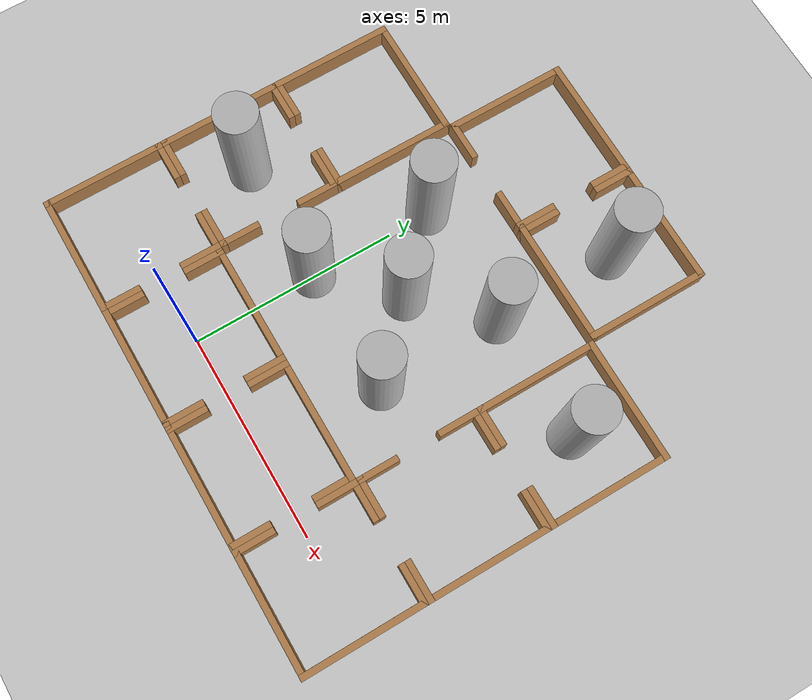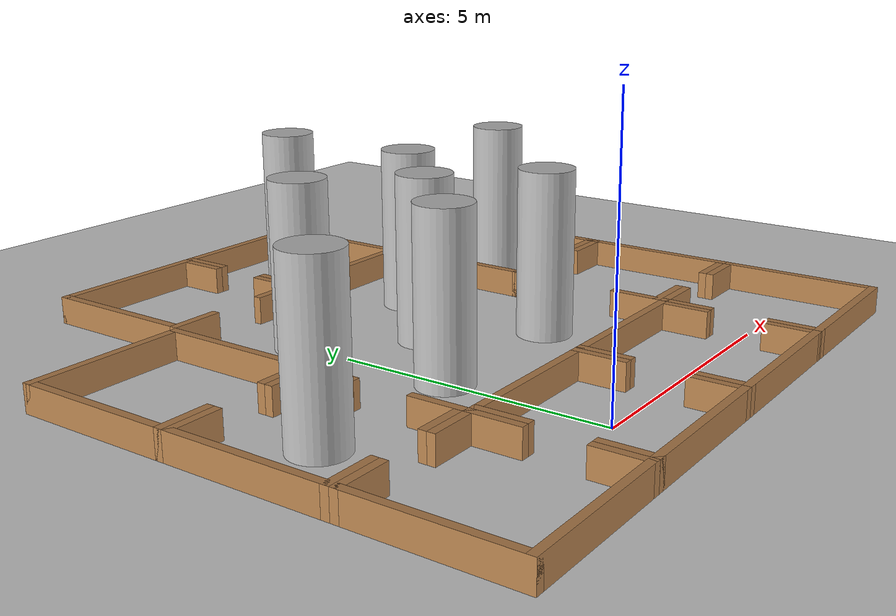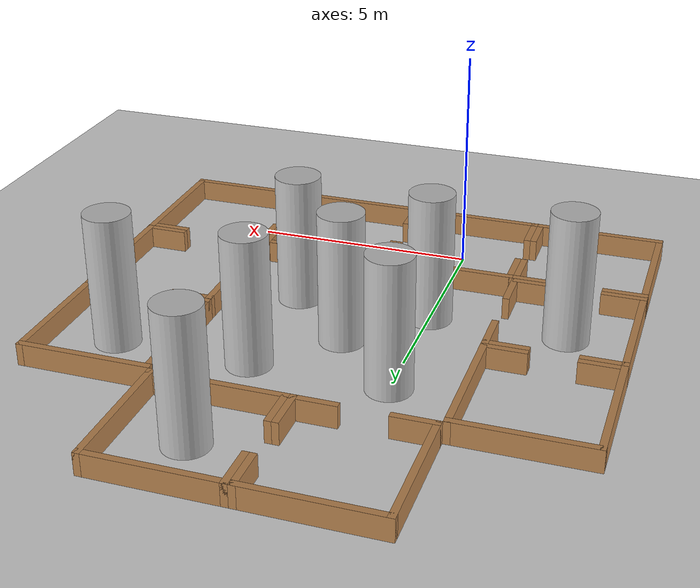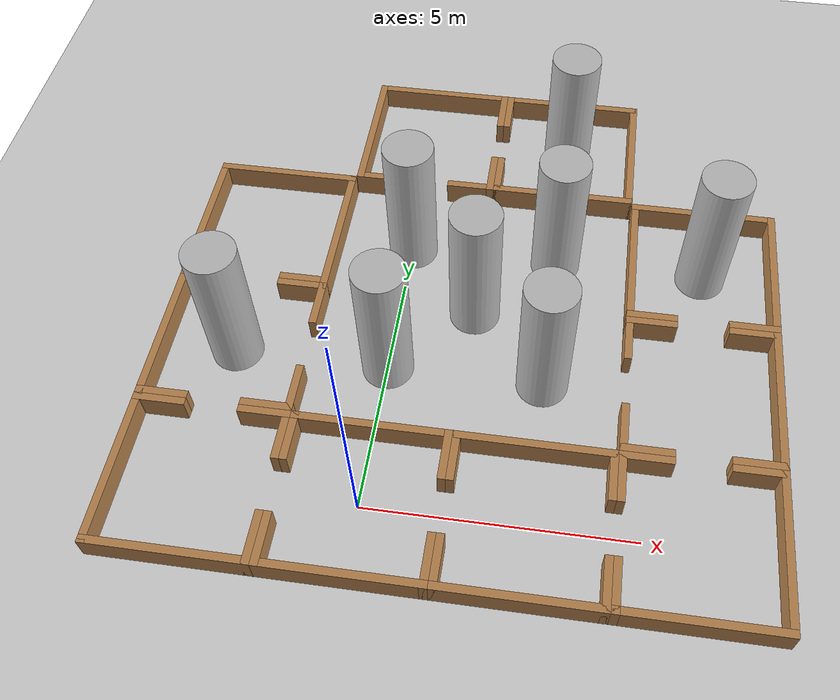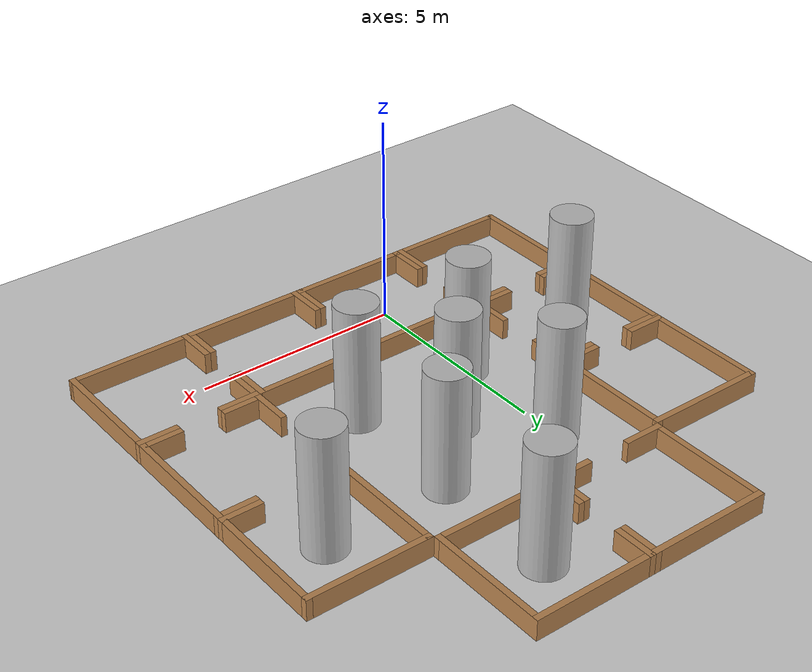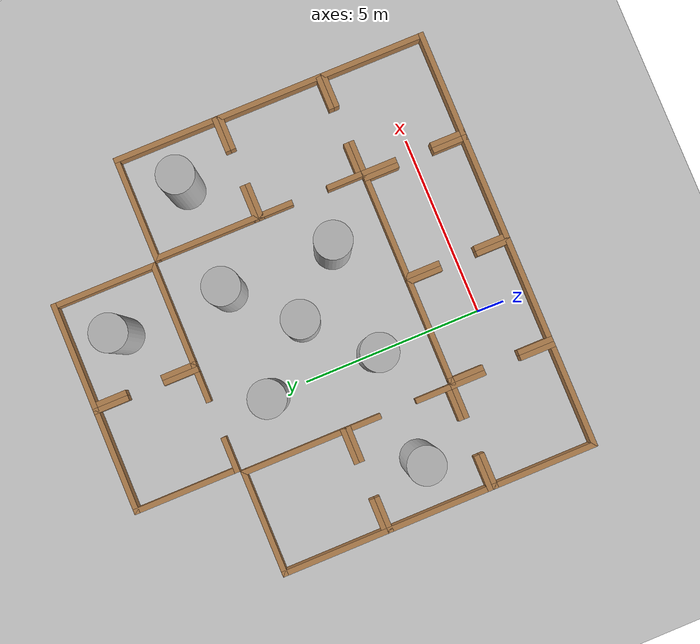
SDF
<sdf version='1.6'>
  <world name='default'>
    <!-- A global light source -->
    <include>
      <uri>model://sun</uri>
    </include>

    <!-- A ground plane -->
    <include>
      <uri>model://ground_plane</uri>
    </include>

    <physics type="ode">
      <real_time_update_rate>1000.0</real_time_update_rate>
      <max_step_size>0.001</max_step_size>
      <real_time_factor>1</real_time_factor>
      <ode>
        <solver>
          <type>quick</type>
          <iters>150</iters>
          <precon_iters>0</precon_iters>
          <sor>1.400000</sor>
          <use_dynamic_moi_rescaling>1</use_dynamic_moi_rescaling>
        </solver>
        <constraints>
          <cfm>0.00001</cfm>
          <erp>0.2</erp>
          <contact_max_correcting_vel>2000.000000</contact_max_correcting_vel>
          <contact_surface_layer>0.01000</contact_surface_layer>
        </constraints>
      </ode>
    </physics>

    <!-- Load world -->
    <include>
      <uri>model://square_3_i</uri>
      <name>s_0_0</name>
      <pose>0 0 0 0 0 0</pose>
    </include>
    <include>
      <uri>model://square_3_i</uri>
      <name>s_3_0</name>
      <pose>3 0 0 0 0 0</pose>
    </include>
    <include>
      <uri>model://square_3_l</uri>
      <name>s_6_0</name>
      <pose>6 0 0 0 0 1.570796</pose>
    </include>
    <include>
      <uri>model://square_3_t</uri>
      <name>s_6_3</name>
      <pose>6 3 0 0 0 0</pose>
    </include>
    <include>
      <uri>model://square_3_d</uri>
      <name>s_6_6</name>
      <pose>6 6 0 0 0 -1.570796</pose>
    </include>
    <include>
      <uri>model://square_3_d</uri>
      <name>s_3_9</name>
      <pose>3 9 0 0 0 3.141592</pose>
    </include>
    <include>
      <uri>model://square_3_l</uri>
      <name>s_0_9</name>
      <pose>0 9 0 0 0 -1.570796</pose>
    </include>

    <include>
      <uri>model://square_3_d</uri>
      <name>s_n3_6</name>
      <pose>-3 6 0 0 0 -1.570796</pose>
    </include>
    <include>
      <uri>model://square_3_t</uri>
      <name>s_n3_3</name>
      <pose>-3 3 0 0 0 3.141592</pose>
    </include>
    <include>
      <uri>model://square_3_l</uri>
      <name>s_n3_0</name>
      <pose>-3 0 0 0 0 0</pose>
    </include>

    <include>
      <uri>model://cylinder_1</uri>
      <name>c_0_3</name>
      <pose>0 3 0 0 0 0</pose>
    </include>
    <include>
      <uri>model://cylinder_1</uri>
      <name>c_3_3</name>
      <pose>3 3 0 0 0 0</pose>
    </include>
    <include>
      <uri>model://cylinder_1</uri>
      <name>c_0_6</name>
      <pose>0 6 0 0 0 0</pose>
    </include>
    <include>
      <uri>model://cylinder_1</uri>
      <name>c_3_6</name>
      <pose>3 6 0 0 0 0</pose>
    </include>
    <include>
      <uri>model://cylinder_1</uri>
      <name>c_15_45</name>
      <pose>1.5 4.5 0 0 0 0</pose>
    </include>

    <include>
      <uri>model://cylinder_1</uri>
      <name>c_6_6</name>
      <pose>6 6 0 0 0 0</pose>
    </include>
    <include>
      <uri>model://cylinder_1</uri>
      <name>c_3_9</name>
      <pose>3 9 0 0 0 0</pose>
    </include>
    <include>
      <uri>model://cylinder_1</uri>
      <name>c_n3_3</name>
      <pose>-3 3 0 0 0 0</pose>
    </include>

    <scene>
      <ambient>0.4 0.4 0.4 1</ambient>
      <background>0.7 0.7 0.7 1</background>
      <shadows>true</shadows>
    </scene>

    <gui fullscreen='0'>
      <camera name='user_camera'>
        <pose>0.0 0.0 17.0 0 1.5708 0</pose>
        <view_controller>orbit</view_controller>
      </camera>
    </gui>
  </world>
</sdf>

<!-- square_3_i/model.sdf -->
<sdf version='1.6'>
  <model name='square_3_i'>
    <pose frame=''>0 0 0 0 -0 0</pose>
    <link name='Wall_0'>
      <collision name='Wall_0_Collision'>
        <geometry>
          <box>
            <size>3 0.15 0.5</size>
          </box>
        </geometry>
        <pose frame=''>0 0 0.25 0 -0 0</pose>
      </collision>
      <visual name='Wall_0_Visual'>
        <pose frame=''>0 0 0.25 0 -0 0</pose>
        <geometry>
          <box>
            <size>3 0.15 0.5</size>
          </box>
        </geometry>
        <material>
          <script>
            <uri>file://media/materials/scripts/gazebo.material</uri>
            <name>Gazebo/Wood</name>
          </script>
          <ambient>1 1 1 1</ambient>
        </material>
      </visual>
      <pose frame=''>0 1.425 0 0 -0 0</pose>
    </link>

    <link name='Wall_2'>
      <collision name='Wall_2_Collision'>
        <geometry>
          <box>
            <size>1 0.15 0.5</size>
          </box>
        </geometry>
        <pose frame=''>0 0 0.25 0 -0 0</pose>
      </collision>
      <visual name='Wall_2_Visual'>
        <pose frame=''>0 0 0.25 0 -0 0</pose>
        <geometry>
          <box>
            <size>1 0.15 0.5</size>
          </box>
        </geometry>
        <material>
          <script>
            <uri>file://media/materials/scripts/gazebo.material</uri>
            <name>Gazebo/Wood</name>
          </script>
          <ambient>1 1 1 1</ambient>
        </material>
      </visual>
      <pose frame=''>-1.425 -1 0 0 0 -1.5708</pose>
    </link>
    <link name='Wall_2a'>
      <collision name='Wall_2a_Collision'>
        <geometry>
          <box>
            <size>1 0.15 0.5</size>
          </box>
        </geometry>
        <pose frame=''>0 0 0.25 0 -0 0</pose>
      </collision>
      <visual name='Wall_2a_Visual'>
        <pose frame=''>0 0 0.25 0 -0 0</pose>
        <geometry>
          <box>
            <size>1 0.15 0.5</size>
          </box>
        </geometry>
        <material>
          <script>
            <uri>file://media/materials/scripts/gazebo.material</uri>
            <name>Gazebo/Wood</name>
          </script>
          <ambient>1 1 1 1</ambient>
        </material>
      </visual>
      <pose frame=''>-1.425 1 0 0 0 -1.5708</pose>
    </link>

    <link name='Wall_3'>
      <collision name='Wall_3_Collision'>
        <geometry>
          <box>
            <size>3 0.15 0.5</size>
          </box>
        </geometry>
        <pose frame=''>0 0 0.25 0 -0 0</pose>
      </collision>
      <visual name='Wall_3_Visual'>
        <pose frame=''>0 0 0.25 0 -0 0</pose>
        <geometry>
          <box>
            <size>3 0.15 0.5</size>
          </box>
        </geometry>
        <material>
          <script>
            <uri>file://media/materials/scripts/gazebo.material</uri>
            <name>Gazebo/Wood</name>
          </script>
          <ambient>1 1 1 1</ambient>
        </material>
      </visual>
      <pose frame=''>0 -1.425 0 0 -0 0</pose>
    </link>

    <link name='Wall_4'>
      <collision name='Wall_4_Collision'>
        <geometry>
          <box>
            <size>1 0.15 0.5</size>
          </box>
        </geometry>
        <pose frame=''>0 0 0.25 0 -0 0</pose>
      </collision>
      <visual name='Wall_4_Visual'>
        <pose frame=''>0 0 0.25 0 -0 0</pose>
        <geometry>
          <box>
            <size>1 0.15 0.5</size>
          </box>
        </geometry>
        <material>
          <script>
            <uri>file://media/materials/scripts/gazebo.material</uri>
            <name>Gazebo/Wood</name>
          </script>
          <ambient>1 1 1 1</ambient>
        </material>
      </visual>
      <pose frame=''>1.425 -1 0 0 -0 1.5708</pose>
    </link>
    <link name='Wall_4a'>
      <collision name='Wall_4a_Collision'>
        <geometry>
          <box>
            <size>1 0.15 0.5</size>
          </box>
        </geometry>
        <pose frame=''>0 0 0.25 0 -0 0</pose>
      </collision>
      <visual name='Wall_4a_Visual'>
        <pose frame=''>0 0 0.25 0 -0 0</pose>
        <geometry>
          <box>
            <size>1 0.15 0.5</size>
          </box>
        </geometry>
        <material>
          <script>
            <uri>file://media/materials/scripts/gazebo.material</uri>
            <name>Gazebo/Wood</name>
          </script>
          <ambient>1 1 1 1</ambient>
        </material>
      </visual>
      <pose frame=''>1.425 1 0 0 -0 1.5708</pose>
    </link>

    <static>1</static>
  </model>
</sdf>

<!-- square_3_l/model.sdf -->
<sdf version='1.6'>
  <model name='square_3_l'>
    <pose frame=''>0 0 0 0 -0 0</pose>
    <link name='Wall_0'>
      <collision name='Wall_0_Collision'>
        <geometry>
          <box>
            <size>1 0.15 0.5</size>
          </box>
        </geometry>
        <pose frame=''>0 0 0.25 0 -0 0</pose>
      </collision>
      <visual name='Wall_0_Visual'>
        <pose frame=''>0 0 0.25 0 -0 0</pose>
        <geometry>
          <box>
            <size>1 0.15 0.5</size>
          </box>
        </geometry>
        <material>
          <script>
            <uri>file://media/materials/scripts/gazebo.material</uri>
            <name>Gazebo/Wood</name>
          </script>
          <ambient>1 1 1 1</ambient>
        </material>
      </visual>
      <pose frame=''>-1 1.425 0 0 -0 0</pose>
    </link>
    <link name='Wall_0a'>
      <collision name='Wall_0a_Collision'>
        <geometry>
          <box>
            <size>1 0.15 0.5</size>
          </box>
        </geometry>
        <pose frame=''>0 0 0.25 0 -0 0</pose>
      </collision>
      <visual name='Wall_0a_Visual'>
        <pose frame=''>0 0 0.25 0 -0 0</pose>
        <geometry>
          <box>
            <size>1 0.15 0.5</size>
          </box>
        </geometry>
        <material>
          <script>
            <uri>file://media/materials/scripts/gazebo.material</uri>
            <name>Gazebo/Wood</name>
          </script>
          <ambient>1 1 1 1</ambient>
        </material>
      </visual>
      <pose frame=''>1 1.425 0 0 -0 0</pose>
    </link>

    <link name='Wall_2'>
      <collision name='Wall_2_Collision'>
        <geometry>
          <box>
            <size>3 0.15 0.5</size>
          </box>
        </geometry>
        <pose frame=''>0 0 0.25 0 -0 0</pose>
      </collision>
      <visual name='Wall_2_Visual'>
        <pose frame=''>0 0 0.25 0 -0 0</pose>
        <geometry>
          <box>
            <size>3 0.15 0.5</size>
          </box>
        </geometry>
        <material>
          <script>
            <uri>file://media/materials/scripts/gazebo.material</uri>
            <name>Gazebo/Wood</name>
          </script>
          <ambient>1 1 1 1</ambient>
        </material>
      </visual>
      <pose frame=''>-1.425 0 0 0 0 -1.5708</pose>
    </link>

    <link name='Wall_3'>
      <collision name='Wall_3_Collision'>
        <geometry>
          <box>
            <size>3 0.15 0.5</size>
          </box>
        </geometry>
        <pose frame=''>0 0 0.25 0 -0 0</pose>
      </collision>
      <visual name='Wall_3_Visual'>
        <pose frame=''>0 0 0.25 0 -0 0</pose>
        <geometry>
          <box>
            <size>3 0.15 0.5</size>
          </box>
        </geometry>
        <material>
          <script>
            <uri>file://media/materials/scripts/gazebo.material</uri>
            <name>Gazebo/Wood</name>
          </script>
          <ambient>1 1 1 1</ambient>
        </material>
      </visual>
      <pose frame=''>0 -1.425 0 0 -0 0</pose>
    </link>

    <link name='Wall_4'>
      <collision name='Wall_4_Collision'>
        <geometry>
          <box>
            <size>1 0.15 0.5</size>
          </box>
        </geometry>
        <pose frame=''>0 0 0.25 0 -0 0</pose>
      </collision>
      <visual name='Wall_4_Visual'>
        <pose frame=''>0 0 0.25 0 -0 0</pose>
        <geometry>
          <box>
            <size>1 0.15 0.5</size>
          </box>
        </geometry>
        <material>
          <script>
            <uri>file://media/materials/scripts/gazebo.material</uri>
            <name>Gazebo/Wood</name>
          </script>
          <ambient>1 1 1 1</ambient>
        </material>
      </visual>
      <pose frame=''>1.425 -1 0 0 -0 1.5708</pose>
    </link>
    <link name='Wall_4a'>
      <collision name='Wall_4a_Collision'>
        <geometry>
          <box>
            <size>1 0.15 0.5</size>
          </box>
        </geometry>
        <pose frame=''>0 0 0.25 0 -0 0</pose>
      </collision>
      <visual name='Wall_4a_Visual'>
        <pose frame=''>0 0 0.25 0 -0 0</pose>
        <geometry>
          <box>
            <size>1 0.15 0.5</size>
          </box>
        </geometry>
        <material>
          <script>
            <uri>file://media/materials/scripts/gazebo.material</uri>
            <name>Gazebo/Wood</name>
          </script>
          <ambient>1 1 1 1</ambient>
        </material>
      </visual>
      <pose frame=''>1.425 1 0 0 -0 1.5708</pose>
    </link>

    <static>1</static>
  </model>
</sdf>

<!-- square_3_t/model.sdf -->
<sdf version='1.6'>
  <model name='square_3_t'>
    <pose frame=''>0 0 0 0 -0 0</pose>
    <link name='Wall_0'>
      <collision name='Wall_0_Collision'>
        <geometry>
          <box>
            <size>1 0.15 0.5</size>
          </box>
        </geometry>
        <pose frame=''>0 0 0.25 0 -0 0</pose>
      </collision>
      <visual name='Wall_0_Visual'>
        <pose frame=''>0 0 0.25 0 -0 0</pose>
        <geometry>
          <box>
            <size>1 0.15 0.5</size>
          </box>
        </geometry>
        <material>
          <script>
            <uri>file://media/materials/scripts/gazebo.material</uri>
            <name>Gazebo/Wood</name>
          </script>
          <ambient>1 1 1 1</ambient>
        </material>
      </visual>
      <pose frame=''>-1 1.425 0 0 -0 0</pose>
    </link>
    <link name='Wall_0a'>
      <collision name='Wall_0a_Collision'>
        <geometry>
          <box>
            <size>1 0.15 0.5</size>
          </box>
        </geometry>
        <pose frame=''>0 0 0.25 0 -0 0</pose>
      </collision>
      <visual name='Wall_0a_Visual'>
        <pose frame=''>0 0 0.25 0 -0 0</pose>
        <geometry>
          <box>
            <size>1 0.15 0.5</size>
          </box>
        </geometry>
        <material>
          <script>
            <uri>file://media/materials/scripts/gazebo.material</uri>
            <name>Gazebo/Wood</name>
          </script>
          <ambient>1 1 1 1</ambient>
        </material>
      </visual>
      <pose frame=''>1 1.425 0 0 -0 0</pose>
    </link>

    <link name='Wall_2'>
      <collision name='Wall_2_Collision'>
        <geometry>
          <box>
            <size>1 0.15 0.5</size>
          </box>
        </geometry>
        <pose frame=''>0 0 0.25 0 -0 0</pose>
      </collision>
      <visual name='Wall_2_Visual'>
        <pose frame=''>0 0 0.25 0 -0 0</pose>
        <geometry>
          <box>
            <size>1 0.15 0.5</size>
          </box>
        </geometry>
        <material>
          <script>
            <uri>file://media/materials/scripts/gazebo.material</uri>
            <name>Gazebo/Wood</name>
          </script>
          <ambient>1 1 1 1</ambient>
        </material>
      </visual>
      <pose frame=''>-1.425 -1 0 0 0 -1.5708</pose>
    </link>
    <link name='Wall_2a'>
      <collision name='Wall_2a_Collision'>
        <geometry>
          <box>
            <size>1 0.15 0.5</size>
          </box>
        </geometry>
        <pose frame=''>0 0 0.25 0 -0 0</pose>
      </collision>
      <visual name='Wall_2a_Visual'>
        <pose frame=''>0 0 0.25 0 -0 0</pose>
        <geometry>
          <box>
            <size>1 0.15 0.5</size>
          </box>
        </geometry>
        <material>
          <script>
            <uri>file://media/materials/scripts/gazebo.material</uri>
            <name>Gazebo/Wood</name>
          </script>
          <ambient>1 1 1 1</ambient>
        </material>
      </visual>
      <pose frame=''>-1.425 1 0 0 0 -1.5708</pose>
    </link>

    <link name='Wall_3'>
      <collision name='Wall_3_Collision'>
        <geometry>
          <box>
            <size>1 0.15 0.5</size>
          </box>
        </geometry>
        <pose frame=''>0 0 0.25 0 -0 0</pose>
      </collision>
      <visual name='Wall_3_Visual'>
        <pose frame=''>0 0 0.25 0 -0 0</pose>
        <geometry>
          <box>
            <size>1 0.15 0.5</size>
          </box>
        </geometry>
        <material>
          <script>
            <uri>file://media/materials/scripts/gazebo.material</uri>
            <name>Gazebo/Wood</name>
          </script>
          <ambient>1 1 1 1</ambient>
        </material>
      </visual>
      <pose frame=''>-1 -1.425 0 0 -0 0</pose>
    </link>
    <link name='Wall_3a'>
      <collision name='Wall_3a_Collision'>
        <geometry>
          <box>
            <size>1 0.15 0.5</size>
          </box>
        </geometry>
        <pose frame=''>0 0 0.25 0 -0 0</pose>
      </collision>
      <visual name='Wall_3a_Visual'>
        <pose frame=''>0 0 0.25 0 -0 0</pose>
        <geometry>
          <box>
            <size>1 0.15 0.5</size>
          </box>
        </geometry>
        <material>
          <script>
            <uri>file://media/materials/scripts/gazebo.material</uri>
            <name>Gazebo/Wood</name>
          </script>
          <ambient>1 1 1 1</ambient>
        </material>
      </visual>
      <pose frame=''>1 -1.425 0 0 -0 0</pose>
    </link>

    <link name='Wall_4'>
      <collision name='Wall_4_Collision'>
        <geometry>
          <box>
            <size>3 0.15 0.5</size>
          </box>
        </geometry>
        <pose frame=''>0 0 0.25 0 -0 0</pose>
      </collision>
      <visual name='Wall_4_Visual'>
        <pose frame=''>0 0 0.25 0 -0 0</pose>
        <geometry>
          <box>
            <size>3 0.15 0.5</size>
          </box>
        </geometry>
        <material>
          <script>
            <uri>file://media/materials/scripts/gazebo.material</uri>
            <name>Gazebo/Wood</name>
          </script>
          <ambient>1 1 1 1</ambient>
        </material>
      </visual>
      <pose frame=''>1.425 0 0 0 -0 1.5708</pose>
    </link>
    <static>1</static>
  </model>
</sdf>

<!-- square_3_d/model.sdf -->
<sdf version='1.6'>
  <model name='square_3_d'>
    <pose frame=''>0 0 0 0 -0 0</pose>
    <link name='Wall_0'>
      <collision name='Wall_0_Collision'>
        <geometry>
          <box>
            <size>3 0.15 0.5</size>
          </box>
        </geometry>
        <pose frame=''>0 0 0.25 0 -0 0</pose>
      </collision>
      <visual name='Wall_0_Visual'>
        <pose frame=''>0 0 0.25 0 -0 0</pose>
        <geometry>
          <box>
            <size>3 0.15 0.5</size>
          </box>
        </geometry>
        <material>
          <script>
            <uri>file://media/materials/scripts/gazebo.material</uri>
            <name>Gazebo/Wood</name>
          </script>
          <ambient>1 1 1 1</ambient>
        </material>
      </visual>
      <pose frame=''>0 1.425 0 0 -0 0</pose>
    </link>

    <link name='Wall_2'>
      <collision name='Wall_2_Collision'>
        <geometry>
          <box>
            <size>3 0.15 0.5</size>
          </box>
        </geometry>
        <pose frame=''>0 0 0.25 0 -0 0</pose>
      </collision>
      <visual name='Wall_2_Visual'>
        <pose frame=''>0 0 0.25 0 -0 0</pose>
        <geometry>
          <box>
            <size>3 0.15 0.5</size>
          </box>
        </geometry>
        <material>
          <script>
            <uri>file://media/materials/scripts/gazebo.material</uri>
            <name>Gazebo/Wood</name>
          </script>
          <ambient>1 1 1 1</ambient>
        </material>
      </visual>
      <pose frame=''>-1.425 0 0 0 0 -1.5708</pose>
    </link>

    <link name='Wall_3'>
      <collision name='Wall_3_Collision'>
        <geometry>
          <box>
            <size>3 0.15 0.5</size>
          </box>
        </geometry>
        <pose frame=''>0 0 0.25 0 -0 0</pose>
      </collision>
      <visual name='Wall_3_Visual'>
        <pose frame=''>0 0 0.25 0 -0 0</pose>
        <geometry>
          <box>
            <size>3 0.15 0.5</size>
          </box>
        </geometry>
        <material>
          <script>
            <uri>file://media/materials/scripts/gazebo.material</uri>
            <name>Gazebo/Wood</name>
          </script>
          <ambient>1 1 1 1</ambient>
        </material>
      </visual>
      <pose frame=''>0 -1.425 0 0 -0 0</pose>
    </link>

    <link name='Wall_4'>
      <collision name='Wall_4_Collision'>
        <geometry>
          <box>
            <size>1 0.15 0.5</size>
          </box>
        </geometry>
        <pose frame=''>0 0 0.25 0 -0 0</pose>
      </collision>
      <visual name='Wall_4_Visual'>
        <pose frame=''>0 0 0.25 0 -0 0</pose>
        <geometry>
          <box>
            <size>1 0.15 0.5</size>
          </box>
        </geometry>
        <material>
          <script>
            <uri>file://media/materials/scripts/gazebo.material</uri>
            <name>Gazebo/Wood</name>
          </script>
          <ambient>1 1 1 1</ambient>
        </material>
      </visual>
      <pose frame=''>1.425 -1 0 0 -0 1.5708</pose>
    </link>
    <link name='Wall_4a'>
      <collision name='Wall_4_Collision'>
        <geometry>
          <box>
            <size>1 0.15 0.5</size>
          </box>
        </geometry>
        <pose frame=''>0 0 0.25 0 -0 0</pose>
      </collision>
      <visual name='Wall_4a_Visual'>
        <pose frame=''>0 0 0.25 0 -0 0</pose>
        <geometry>
          <box>
            <size>1 0.15 0.5</size>
          </box>
        </geometry>
        <material>
          <script>
            <uri>file://media/materials/scripts/gazebo.material</uri>
            <name>Gazebo/Wood</name>
          </script>
          <ambient>1 1 1 1</ambient>
        </material>
      </visual>
      <pose frame=''>1.425 1 0 0 -0 1.5708</pose>
    </link>

    <static>1</static>
  </model>
</sdf>

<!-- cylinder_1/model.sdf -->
<sdf version="1.5">
    <model name="cylinder_1">
        <static>true</static>
        <link name="link">
            <collision name="collision1">
                <pose>0 0 0 0 0 0</pose>
                <geometry>
                    <mesh>
                        <uri>model://cylinder_1/meshes/cylinder_1.stl</uri>
                    </mesh>
                </geometry>
            </collision>
            <visual name="visual1">

              <pose>0 0 0 0 0 0</pose>
              <geometry>
              <mesh>
                 <uri>model://cylinder_1/meshes/cylinder_1.dae</uri>
              </mesh>
              </geometry>
             </visual>
        </link>
    </model>
</sdf>
